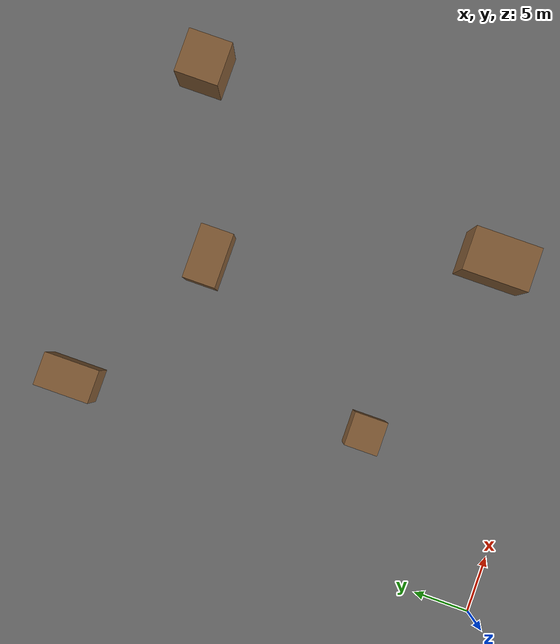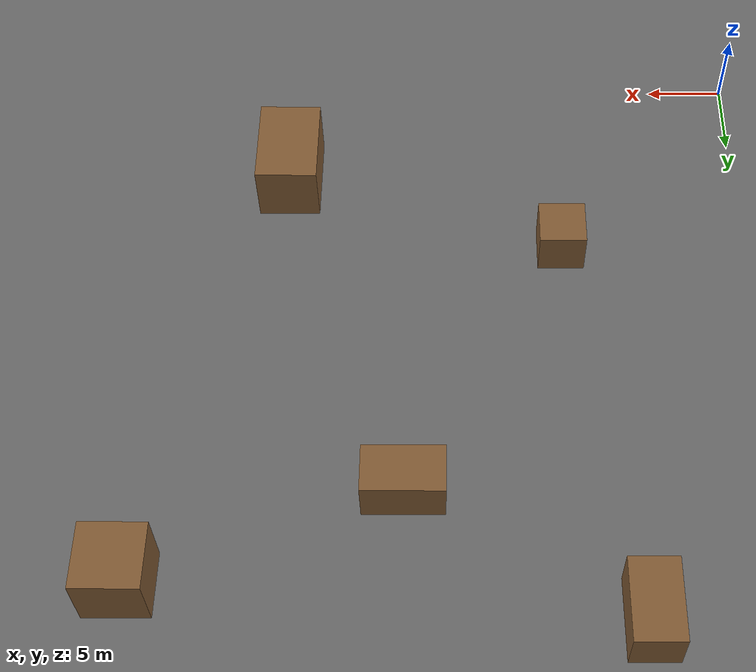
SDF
<?xml version="1.0" ?>
<sdf version="1.7">
  <world name="disaster">

    <!-- physics + plugins -->
    <physics name="default_physics" type="ode">
      <max_step_size>0.004</max_step_size>
      <real_time_factor>1.0</real_time_factor>
    </physics>
    <plugin filename="gz-sim-physics-system" name="gz::sim::systems::Physics"/>
    <plugin filename="gz-sim-sensors-system" name="gz::sim::systems::Sensors">
      <render_engine>ogre2</render_engine>
    </plugin>
    <plugin filename="gz-sim-user-commands-system"
            name="gz::sim::systems::UserCommands"/>
    <plugin filename="gz-sim-scene-broadcaster-system"
            name="gz::sim::systems::SceneBroadcaster"/>

    <scene>
      <ambient>0.4 0.4 0.4 1</ambient>
      <background>0.7 0.7 0.8 1</background>
      <shadows>true</shadows>
    </scene>

    <light type="directional" name="sun">
      <cast_shadows>true</cast_shadows>
      <pose>0 0 30 0 0 0</pose>
      <diffuse>0.9 0.9 0.9 1</diffuse>
      <specular>0.2 0.2 0.2 1</specular>
      <direction>-0.4 0.3 -0.9</direction>
    </light>

    <!-- ground plane (the 50x50 arena) -->
    <model name="ground_plane">
      <static>true</static>
      <link name="link">
        <collision name="collision">
          <geometry><plane><normal>0 0 1</normal><size>50 50</size></plane></geometry>
        </collision>
        <visual name="visual">
          <geometry><plane><normal>0 0 1</normal><size>50 50</size></plane></geometry>
          <material><ambient>0.3 0.3 0.3 1</ambient><diffuse>0.4 0.4 0.4 1</diffuse></material>
        </visual>
      </link>
    </model>

    <!-- obstacle blocks (rubble / damaged structures). A representative cluster;
         for parametric layouts, generate this file from SimConfig at build time. -->
    <model name="obstacle_1"><static>true</static><pose>12 14 1.5 0 0 0</pose>
      <link name="l"><collision name="c"><geometry><box><size>3 3 3</size></box></geometry></collision>
      <visual name="v"><geometry><box><size>3 3 3</size></box></geometry>
        <material><diffuse>0.5 0.35 0.2 1</diffuse></material></visual></link></model>
    <model name="obstacle_2"><static>true</static><pose>30 8 2 0 0 0</pose>
      <link name="l"><collision name="c"><geometry><box><size>4 6 4</size></box></geometry></collision>
      <visual name="v"><geometry><box><size>4 6 4</size></box></geometry>
        <material><diffuse>0.5 0.35 0.2 1</diffuse></material></visual></link></model>
    <model name="obstacle_3"><static>true</static><pose>22 32 1.5 0 0 0</pose>
      <link name="l"><collision name="c"><geometry><box><size>5 3 3</size></box></geometry></collision>
      <visual name="v"><geometry><box><size>5 3 3</size></box></geometry>
        <material><diffuse>0.5 0.35 0.2 1</diffuse></material></visual></link></model>
    <model name="obstacle_4"><static>true</static><pose>38 38 2 0 0 0</pose>
      <link name="l"><collision name="c"><geometry><box><size>4 4 4</size></box></geometry></collision>
      <visual name="v"><geometry><box><size>4 4 4</size></box></geometry>
        <material><diffuse>0.5 0.35 0.2 1</diffuse></material></visual></link></model>
    <model name="obstacle_5"><static>true</static><pose>8 40 1.5 0 0 0</pose>
      <link name="l"><collision name="c"><geometry><box><size>3 5 3</size></box></geometry></collision>
      <visual name="v"><geometry><box><size>3 5 3</size></box></geometry>
        <material><diffuse>0.5 0.35 0.2 1</diffuse></material></visual></link></model>

  </world>
</sdf>
